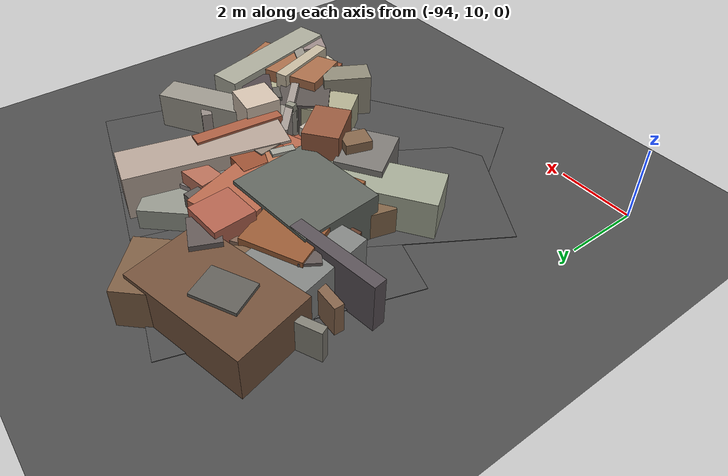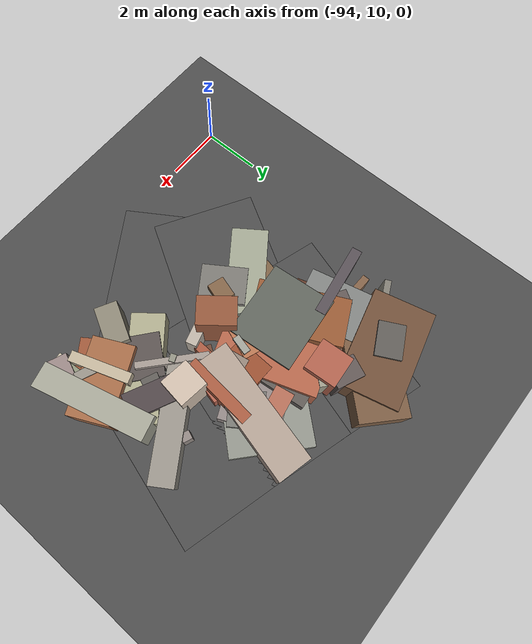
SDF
<sdf version="1.6">
 <world name="navitas_arena">
  <model name="ground_plane">
   <static>true</static>
   <link name="link">
    <collision name="collision">
     <geometry><plane><normal>0 0 1</normal><size>400 400</size></plane></geometry>
     <surface><friction><ode><mu>0.800</mu><mu2>0.800</mu2></ode></friction></surface>
    </collision>
    <visual name="visual">
     <cast_shadows>false</cast_shadows>
     <geometry><plane><normal>0 0 1</normal><size>400 400</size></plane></geometry>
     <material>
      <specular>0.04 0.04 0.04 1</specular>
      <script>
       <uri>file://media/materials/scripts/navitas_asphalt.material</uri>
       <name>Navitas/RealArenaAsphalt</name>
      </script>
     </material>
    </visual>
   </link>
  </model>
  <model name="road_kolay_2_13">
   <static>true</static>
   <pose>-88.023 12.771 0.040 0 0 2.145</pose>
   <link name="link">
    <collision name="col"><geometry><box><size>3.309 6.000 0.020</size></box></geometry></collision>
    <visual name="vis">
     <geometry><box><size>3.309 6.000 0.020</size></box></geometry>
     <material>
      <specular>0.04 0.04 0.04 1</specular>
      <script>
       <uri>file://media/materials/scripts/navitas_asphalt.material</uri>
       <name>Navitas/RealArenaAsphalt</name>
      </script>
     </material>
    </visual>
   </link>
  </model>
  <model name="road_kolay_2_14">
   <static>true</static>
   <pose>-89.848 14.469 0.040 0 0 2.611</pose>
   <link name="link">
    <collision name="col"><geometry><box><size>3.613 6.000 0.020</size></box></geometry></collision>
    <visual name="vis">
     <geometry><box><size>3.613 6.000 0.020</size></box></geometry>
     <material>
      <specular>0.04 0.04 0.04 1</specular>
      <script>
       <uri>file://media/materials/scripts/navitas_asphalt.material</uri>
       <name>Navitas/RealArenaAsphalt</name>
      </script>
     </material>
    </visual>
   </link>
  </model>
  <model name="road_kolay_3_21">
   <static>true</static>
   <pose>-85.226 16.409 0.040 0 0 2.866</pose>
   <link name="link">
    <collision name="col"><geometry><box><size>3.599 6.000 0.020</size></box></geometry></collision>
    <visual name="vis">
     <geometry><box><size>3.599 6.000 0.020</size></box></geometry>
     <material>
      <specular>0.04 0.04 0.04 1</specular>
      <script>
       <uri>file://media/materials/scripts/navitas_asphalt.material</uri>
       <name>Navitas/RealArenaAsphalt</name>
      </script>
     </material>
    </visual>
   </link>
  </model>
  <model name="road_kolay_3_22">
   <static>true</static>
   <pose>-87.730 17.138 0.040 0 0 2.850</pose>
   <link name="link">
    <collision name="col"><geometry><box><size>3.416 6.000 0.020</size></box></geometry></collision>
    <visual name="vis">
     <geometry><box><size>3.416 6.000 0.020</size></box></geometry>
     <material>
      <specular>0.04 0.04 0.04 1</specular>
      <script>
       <uri>file://media/materials/scripts/navitas_asphalt.material</uri>
       <name>Navitas/RealArenaAsphalt</name>
      </script>
     </material>
    </visual>
   </link>
  </model>
  <model name="road_kolay_3_23">
   <static>true</static>
   <pose>-90.262 17.910 0.040 0 0 2.842</pose>
   <link name="link">
    <collision name="col"><geometry><box><size>3.678 6.000 0.020</size></box></geometry></collision>
    <visual name="vis">
     <geometry><box><size>3.678 6.000 0.020</size></box></geometry>
     <material>
      <specular>0.04 0.04 0.04 1</specular>
      <script>
       <uri>file://media/materials/scripts/navitas_asphalt.material</uri>
       <name>Navitas/RealArenaAsphalt</name>
      </script>
     </material>
    </visual>
   </link>
  </model>
  <model name="blk_kolay_2_1_0">
   <static>true</static>
   <pose>-91.252 17.750 0.000 0 0 0</pose>
   <link name="link">
    <collision name="col_0">
     <pose>0.917 0.710 0.527 0.000 0.000 0.587</pose>
     <geometry><box><size>1.884 0.183 1.054</size></box></geometry>
    </collision>
    <visual name="vis_0">
     <pose>0.917 0.710 0.527 0.000 0.000 0.587</pose>
     <geometry><box><size>1.884 0.183 1.054</size></box></geometry>
     <material>
      <ambient>0.48 0.37 0.31 1</ambient>
      <diffuse>0.52 0.40 0.33 1</diffuse>
      <specular>0.05 0.05 0.045 1</specular>
     </material>
    </visual>
    <collision name="col_1">
     <pose>0.656 -0.645 0.342 0.000 0.000 0.316</pose>
     <geometry><box><size>1.088 0.505 0.684</size></box></geometry>
    </collision>
    <visual name="vis_1">
     <pose>0.656 -0.645 0.342 0.000 0.000 0.316</pose>
     <geometry><box><size>1.088 0.505 0.684</size></box></geometry>
     <material>
      <ambient>0.44 0.31 0.25 1</ambient>
      <diffuse>0.48 0.34 0.27 1</diffuse>
      <specular>0.05 0.05 0.045 1</specular>
     </material>
    </visual>
    <collision name="col_2">
     <pose>0.271 0.726 0.419 0.000 0.000 1.671</pose>
     <geometry><box><size>0.327 0.238 0.838</size></box></geometry>
    </collision>
    <visual name="vis_2">
     <pose>0.271 0.726 0.419 0.000 0.000 1.671</pose>
     <geometry><box><size>0.327 0.238 0.838</size></box></geometry>
     <material>
      <ambient>0.59 0.37 0.25 1</ambient>
      <diffuse>0.64 0.40 0.27 1</diffuse>
      <specular>0.05 0.05 0.045 1</specular>
     </material>
    </visual>
    <collision name="col_3">
     <pose>0.190 -1.019 0.394 0.000 0.000 0.307</pose>
     <geometry><box><size>0.701 0.986 0.787</size></box></geometry>
    </collision>
    <visual name="vis_3">
     <pose>0.190 -1.019 0.394 0.000 0.000 0.307</pose>
     <geometry><box><size>0.701 0.986 0.787</size></box></geometry>
     <material>
      <ambient>0.36 0.22 0.16 1</ambient>
      <diffuse>0.39 0.24 0.17 1</diffuse>
      <specular>0.05 0.05 0.045 1</specular>
     </material>
    </visual>
    <collision name="col_4">
     <pose>-0.567 -0.463 0.653 0.000 0.000 0.149</pose>
     <geometry><box><size>2.492 0.342 1.306</size></box></geometry>
    </collision>
    <visual name="vis_4">
     <pose>-0.567 -0.463 0.653 0.000 0.000 0.149</pose>
     <geometry><box><size>2.492 0.342 1.306</size></box></geometry>
     <material>
      <ambient>0.32 0.30 0.31 1</ambient>
      <diffuse>0.35 0.32 0.34 1</diffuse>
      <specular>0.05 0.05 0.045 1</specular>
     </material>
    </visual>
    <collision name="col_5">
     <pose>0.451 -0.109 0.428 0.000 0.000 2.022</pose>
     <geometry><box><size>3.048 0.359 0.857</size></box></geometry>
    </collision>
    <visual name="vis_5">
     <pose>0.451 -0.109 0.428 0.000 0.000 2.022</pose>
     <geometry><box><size>3.048 0.359 0.857</size></box></geometry>
     <material>
      <ambient>0.61 0.36 0.24 1</ambient>
      <diffuse>0.66 0.39 0.26 1</diffuse>
      <specular>0.05 0.05 0.045 1</specular>
     </material>
    </visual>
    <collision name="col_6">
     <pose>-0.659 0.083 0.408 0.000 0.000 -0.030</pose>
     <geometry><box><size>1.586 0.243 0.816</size></box></geometry>
    </collision>
    <visual name="vis_6">
     <pose>-0.659 0.083 0.408 0.000 0.000 -0.030</pose>
     <geometry><box><size>1.586 0.243 0.816</size></box></geometry>
     <material>
      <ambient>0.49 0.36 0.27 1</ambient>
      <diffuse>0.52 0.39 0.29 1</diffuse>
      <specular>0.05 0.05 0.045 1</specular>
     </material>
    </visual>
    <collision name="col_7">
     <pose>0.561 0.576 0.493 0.000 0.000 -0.481</pose>
     <geometry><box><size>0.327 0.253 0.987</size></box></geometry>
    </collision>
    <visual name="vis_7">
     <pose>0.561 0.576 0.493 0.000 0.000 -0.481</pose>
     <geometry><box><size>0.327 0.253 0.987</size></box></geometry>
     <material>
      <ambient>0.62 0.57 0.52 1</ambient>
      <diffuse>0.67 0.61 0.56 1</diffuse>
      <specular>0.05 0.05 0.045 1</specular>
     </material>
    </visual>
   </link>
  </model>
  <model name="blk_kolay_2_1_2">
   <static>true</static>
   <pose>-90.778 18.878 0.000 0 0 0</pose>
   <link name="link">
    <collision name="col_0">
     <pose>0.502 0.430 0.367 0.000 0.000 3.682</pose>
     <geometry><box><size>2.176 0.177 0.734</size></box></geometry>
    </collision>
    <visual name="vis_0">
     <pose>0.502 0.430 0.367 0.000 0.000 3.682</pose>
     <geometry><box><size>2.176 0.177 0.734</size></box></geometry>
     <material>
      <ambient>0.46 0.36 0.29 1</ambient>
      <diffuse>0.50 0.38 0.31 1</diffuse>
      <specular>0.05 0.05 0.045 1</specular>
     </material>
    </visual>
    <collision name="col_1">
     <pose>0.151 0.289 0.379 0.000 0.000 2.322</pose>
     <geometry><box><size>0.673 0.251 0.758</size></box></geometry>
    </collision>
    <visual name="vis_1">
     <pose>0.151 0.289 0.379 0.000 0.000 2.322</pose>
     <geometry><box><size>0.673 0.251 0.758</size></box></geometry>
     <material>
      <ambient>0.66 0.41 0.30 1</ambient>
      <diffuse>0.71 0.44 0.32 1</diffuse>
      <specular>0.05 0.05 0.045 1</specular>
     </material>
    </visual>
    <collision name="col_2">
     <pose>1.167 0.300 0.648 0.000 0.000 2.728</pose>
     <geometry><box><size>0.932 0.736 1.295</size></box></geometry>
    </collision>
    <visual name="vis_2">
     <pose>1.167 0.300 0.648 0.000 0.000 2.728</pose>
     <geometry><box><size>0.932 0.736 1.295</size></box></geometry>
     <material>
      <ambient>0.36 0.32 0.32 1</ambient>
      <diffuse>0.39 0.35 0.34 1</diffuse>
      <specular>0.05 0.05 0.045 1</specular>
     </material>
    </visual>
    <collision name="col_3">
     <pose>-0.504 0.769 0.622 0.000 0.000 3.621</pose>
     <geometry><box><size>1.140 0.856 1.244</size></box></geometry>
    </collision>
    <visual name="vis_3">
     <pose>-0.504 0.769 0.622 0.000 0.000 3.621</pose>
     <geometry><box><size>1.140 0.856 1.244</size></box></geometry>
     <material>
      <ambient>0.35 0.34 0.32 1</ambient>
      <diffuse>0.38 0.37 0.35 1</diffuse>
      <specular>0.05 0.05 0.045 1</specular>
     </material>
    </visual>
    <collision name="col_4">
     <pose>0.176 -0.051 0.425 0.000 0.000 3.966</pose>
     <geometry><box><size>1.147 0.724 0.850</size></box></geometry>
    </collision>
    <visual name="vis_4">
     <pose>0.176 -0.051 0.425 0.000 0.000 3.966</pose>
     <geometry><box><size>1.147 0.724 0.850</size></box></geometry>
     <material>
      <ambient>0.64 0.40 0.28 1</ambient>
      <diffuse>0.69 0.43 0.30 1</diffuse>
      <specular>0.05 0.05 0.045 1</specular>
     </material>
    </visual>
    <collision name="col_5">
     <pose>-0.439 -0.931 0.534 0.000 0.000 1.810</pose>
     <geometry><box><size>2.808 1.705 1.067</size></box></geometry>
    </collision>
    <visual name="vis_5">
     <pose>-0.439 -0.931 0.534 0.000 0.000 1.810</pose>
     <geometry><box><size>2.808 1.705 1.067</size></box></geometry>
     <material>
      <ambient>0.48 0.48 0.47 1</ambient>
      <diffuse>0.51 0.52 0.51 1</diffuse>
      <specular>0.05 0.05 0.045 1</specular>
     </material>
    </visual>
    <collision name="col_6">
     <pose>-0.949 0.223 0.438 0.000 0.000 3.591</pose>
     <geometry><box><size>2.947 0.214 0.875</size></box></geometry>
    </collision>
    <visual name="vis_6">
     <pose>-0.949 0.223 0.438 0.000 0.000 3.591</pose>
     <geometry><box><size>2.947 0.214 0.875</size></box></geometry>
     <material>
      <ambient>0.47 0.46 0.43 1</ambient>
      <diffuse>0.51 0.50 0.46 1</diffuse>
      <specular>0.05 0.05 0.045 1</specular>
     </material>
    </visual>
   </link>
  </model>
  <model name="blk_kolay_2_1_3">
   <static>true</static>
   <pose>-89.079 15.612 0.000 0 0 0</pose>
   <link name="link">
    <collision name="col_0">
     <pose>-0.036 -0.900 0.765 0.000 0.000 2.844</pose>
     <geometry><box><size>0.554 0.686 1.530</size></box></geometry>
    </collision>
    <visual name="vis_0">
     <pose>-0.036 -0.900 0.765 0.000 0.000 2.844</pose>
     <geometry><box><size>0.554 0.686 1.530</size></box></geometry>
     <material>
      <ambient>0.48 0.37 0.27 1</ambient>
      <diffuse>0.52 0.40 0.29 1</diffuse>
      <specular>0.05 0.05 0.045 1</specular>
     </material>
    </visual>
    <collision name="col_1">
     <pose>-0.306 -1.053 0.634 0.000 0.000 2.164</pose>
     <geometry><box><size>1.490 1.232 1.267</size></box></geometry>
    </collision>
    <visual name="vis_1">
     <pose>-0.306 -1.053 0.634 0.000 0.000 2.164</pose>
     <geometry><box><size>1.490 1.232 1.267</size></box></geometry>
     <material>
      <ambient>0.45 0.44 0.42 1</ambient>
      <diffuse>0.49 0.48 0.46 1</diffuse>
      <specular>0.05 0.05 0.045 1</specular>
     </material>
    </visual>
    <collision name="col_2">
     <pose>0.842 0.664 0.658 0.000 0.000 1.318</pose>
     <geometry><box><size>0.598 0.229 1.316</size></box></geometry>
    </collision>
    <visual name="vis_2">
     <pose>0.842 0.664 0.658 0.000 0.000 1.318</pose>
     <geometry><box><size>0.598 0.229 1.316</size></box></geometry>
     <material>
      <ambient>0.59 0.59 0.56 1</ambient>
      <diffuse>0.64 0.64 0.60 1</diffuse>
      <specular>0.05 0.05 0.045 1</specular>
     </material>
    </visual>
    <collision name="col_3">
     <pose>-0.701 0.355 0.391 0.000 0.000 1.319</pose>
     <geometry><box><size>2.519 2.109 0.782</size></box></geometry>
    </collision>
    <visual name="vis_3">
     <pose>-0.701 0.355 0.391 0.000 0.000 1.319</pose>
     <geometry><box><size>2.519 2.109 0.782</size></box></geometry>
     <material>
      <ambient>0.46 0.36 0.26 1</ambient>
      <diffuse>0.50 0.39 0.28 1</diffuse>
      <specular>0.05 0.05 0.045 1</specular>
     </material>
    </visual>
    <collision name="col_4">
     <pose>-0.792 -0.944 0.428 0.000 0.000 3.623</pose>
     <geometry><box><size>1.992 0.194 0.857</size></box></geometry>
    </collision>
    <visual name="vis_4">
     <pose>-0.792 -0.944 0.428 0.000 0.000 3.623</pose>
     <geometry><box><size>1.992 0.194 0.857</size></box></geometry>
     <material>
      <ambient>0.49 0.33 0.26 1</ambient>
      <diffuse>0.52 0.36 0.28 1</diffuse>
      <specular>0.05 0.05 0.045 1</specular>
     </material>
    </visual>
    <collision name="col_5">
     <pose>-0.665 1.035 0.650 0.000 0.000 3.240</pose>
     <geometry><box><size>2.594 2.177 1.300</size></box></geometry>
    </collision>
    <visual name="vis_5">
     <pose>-0.665 1.035 0.650 0.000 0.000 3.240</pose>
     <geometry><box><size>2.594 2.177 1.300</size></box></geometry>
     <material>
      <ambient>0.35 0.37 0.35 1</ambient>
      <diffuse>0.38 0.40 0.37 1</diffuse>
      <specular>0.05 0.05 0.045 1</specular>
     </material>
    </visual>
    <collision name="col_6">
     <pose>-0.996 -0.504 0.455 0.000 0.000 1.246</pose>
     <geometry><box><size>0.411 0.568 0.909</size></box></geometry>
    </collision>
    <visual name="vis_6">
     <pose>-0.996 -0.504 0.455 0.000 0.000 1.246</pose>
     <geometry><box><size>0.411 0.568 0.909</size></box></geometry>
     <material>
      <ambient>0.33 0.31 0.33 1</ambient>
      <diffuse>0.36 0.34 0.36 1</diffuse>
      <specular>0.05 0.05 0.045 1</specular>
     </material>
    </visual>
    <collision name="col_7">
     <pose>0.568 -0.924 0.512 0.000 0.000 3.411</pose>
     <geometry><box><size>2.530 0.370 1.023</size></box></geometry>
    </collision>
    <visual name="vis_7">
     <pose>0.568 -0.924 0.512 0.000 0.000 3.411</pose>
     <geometry><box><size>2.530 0.370 1.023</size></box></geometry>
     <material>
      <ambient>0.69 0.66 0.62 1</ambient>
      <diffuse>0.75 0.71 0.66 1</diffuse>
      <specular>0.05 0.05 0.045 1</specular>
     </material>
    </visual>
    <collision name="col_8">
     <pose>-0.146 -1.322 0.350 0.000 0.000 2.591</pose>
     <geometry><box><size>0.632 0.875 0.700</size></box></geometry>
    </collision>
    <visual name="vis_8">
     <pose>-0.146 -1.322 0.350 0.000 0.000 2.591</pose>
     <geometry><box><size>0.632 0.875 0.700</size></box></geometry>
     <material>
      <ambient>0.66 0.64 0.58 1</ambient>
      <diffuse>0.71 0.69 0.63 1</diffuse>
      <specular>0.05 0.05 0.045 1</specular>
     </material>
    </visual>
   </link>
  </model>
  <model name="blk_kolay_2_1_4">
   <static>true</static>
   <pose>-88.444 17.592 0.000 0 0 0</pose>
   <link name="link">
    <collision name="col_0">
     <pose>1.437 0.765 0.307 0.000 0.000 2.413</pose>
     <geometry><box><size>2.637 1.738 0.614</size></box></geometry>
    </collision>
    <visual name="vis_0">
     <pose>1.437 0.765 0.307 0.000 0.000 2.413</pose>
     <geometry><box><size>2.637 1.738 0.614</size></box></geometry>
     <material>
      <ambient>0.54 0.55 0.50 1</ambient>
      <diffuse>0.58 0.59 0.55 1</diffuse>
      <specular>0.05 0.05 0.045 1</specular>
     </material>
    </visual>
    <collision name="col_1">
     <pose>0.350 -0.708 0.560 0.000 0.000 3.561</pose>
     <geometry><box><size>0.588 0.285 1.121</size></box></geometry>
    </collision>
    <visual name="vis_1">
     <pose>0.350 -0.708 0.560 0.000 0.000 3.561</pose>
     <geometry><box><size>0.588 0.285 1.121</size></box></geometry>
     <material>
      <ambient>0.63 0.36 0.26 1</ambient>
      <diffuse>0.68 0.39 0.29 1</diffuse>
      <specular>0.05 0.05 0.045 1</specular>
     </material>
    </visual>
    <collision name="col_2">
     <pose>1.060 -1.202 0.568 0.000 0.000 2.565</pose>
     <geometry><box><size>2.021 0.335 1.137</size></box></geometry>
    </collision>
    <visual name="vis_2">
     <pose>1.060 -1.202 0.568 0.000 0.000 2.565</pose>
     <geometry><box><size>2.021 0.335 1.137</size></box></geometry>
     <material>
      <ambient>0.64 0.61 0.51 1</ambient>
      <diffuse>0.69 0.66 0.56 1</diffuse>
      <specular>0.05 0.05 0.045 1</specular>
     </material>
    </visual>
    <collision name="col_3">
     <pose>1.548 0.003 0.419 0.000 0.000 2.181</pose>
     <geometry><box><size>1.125 1.141 0.838</size></box></geometry>
    </collision>
    <visual name="vis_3">
     <pose>1.548 0.003 0.419 0.000 0.000 2.181</pose>
     <geometry><box><size>1.125 1.141 0.838</size></box></geometry>
     <material>
      <ambient>0.45 0.45 0.43 1</ambient>
      <diffuse>0.48 0.48 0.46 1</diffuse>
      <specular>0.05 0.05 0.045 1</specular>
     </material>
    </visual>
    <collision name="col_4">
     <pose>-0.584 1.238 0.616 0.000 0.000 2.418</pose>
     <geometry><box><size>0.360 0.444 1.231</size></box></geometry>
    </collision>
    <visual name="vis_4">
     <pose>-0.584 1.238 0.616 0.000 0.000 2.418</pose>
     <geometry><box><size>0.360 0.444 1.231</size></box></geometry>
     <material>
      <ambient>0.59 0.57 0.51 1</ambient>
      <diffuse>0.63 0.62 0.55 1</diffuse>
      <specular>0.05 0.05 0.045 1</specular>
     </material>
    </visual>
    <collision name="col_5">
     <pose>1.048 -0.029 0.376 0.000 0.000 3.567</pose>
     <geometry><box><size>1.938 1.921 0.752</size></box></geometry>
    </collision>
    <visual name="vis_5">
     <pose>1.048 -0.029 0.376 0.000 0.000 3.567</pose>
     <geometry><box><size>1.938 1.921 0.752</size></box></geometry>
     <material>
      <ambient>0.53 0.50 0.49 1</ambient>
      <diffuse>0.58 0.54 0.53 1</diffuse>
      <specular>0.05 0.05 0.045 1</specular>
     </material>
    </visual>
    <collision name="col_6">
     <pose>-0.915 -0.353 0.484 0.000 0.000 3.278</pose>
     <geometry><box><size>0.676 0.528 0.968</size></box></geometry>
    </collision>
    <visual name="vis_6">
     <pose>-0.915 -0.353 0.484 0.000 0.000 3.278</pose>
     <geometry><box><size>0.676 0.528 0.968</size></box></geometry>
     <material>
      <ambient>0.55 0.34 0.22 1</ambient>
      <diffuse>0.59 0.37 0.23 1</diffuse>
      <specular>0.05 0.05 0.045 1</specular>
     </material>
    </visual>
   </link>
  </model>
  <model name="blk_kolay_2_1_6">
   <static>true</static>
   <pose>-88.203 17.367 0.000 0 0 0</pose>
   <link name="link">
    <collision name="col_0">
     <pose>0.743 0.880 0.558 0.000 0.000 3.316</pose>
     <geometry><box><size>1.205 0.608 1.116</size></box></geometry>
    </collision>
    <visual name="vis_0">
     <pose>0.743 0.880 0.558 0.000 0.000 3.316</pose>
     <geometry><box><size>1.205 0.608 1.116</size></box></geometry>
     <material>
      <ambient>0.66 0.40 0.33 1</ambient>
      <diffuse>0.72 0.44 0.35 1</diffuse>
      <specular>0.05 0.05 0.045 1</specular>
     </material>
    </visual>
    <collision name="col_1">
     <pose>1.283 0.393 0.633 0.000 0.000 1.327</pose>
     <geometry><box><size>4.186 1.147 1.265</size></box></geometry>
    </collision>
    <visual name="vis_1">
     <pose>1.283 0.393 0.633 0.000 0.000 1.327</pose>
     <geometry><box><size>4.186 1.147 1.265</size></box></geometry>
     <material>
      <ambient>0.66 0.60 0.55 1</ambient>
      <diffuse>0.71 0.64 0.59 1</diffuse>
      <specular>0.05 0.05 0.045 1</specular>
     </material>
    </visual>
    <collision name="col_2">
     <pose>-0.517 0.370 0.505 0.000 0.000 3.258</pose>
     <geometry><box><size>1.745 2.079 1.010</size></box></geometry>
    </collision>
    <visual name="vis_2">
     <pose>-0.517 0.370 0.505 0.000 0.000 3.258</pose>
     <geometry><box><size>1.745 2.079 1.010</size></box></geometry>
     <material>
      <ambient>0.35 0.33 0.31 1</ambient>
      <diffuse>0.38 0.36 0.34 1</diffuse>
      <specular>0.05 0.05 0.045 1</specular>
     </material>
    </visual>
    <collision name="col_3">
     <pose>-1.314 -0.474 0.508 0.000 0.000 2.666</pose>
     <geometry><box><size>0.609 0.457 1.017</size></box></geometry>
    </collision>
    <visual name="vis_3">
     <pose>-1.314 -0.474 0.508 0.000 0.000 2.666</pose>
     <geometry><box><size>0.609 0.457 1.017</size></box></geometry>
     <material>
      <ambient>0.61 0.60 0.55 1</ambient>
      <diffuse>0.66 0.65 0.59 1</diffuse>
      <specular>0.05 0.05 0.045 1</specular>
     </material>
    </visual>
    <collision name="col_4">
     <pose>0.521 -0.622 0.602 0.000 0.000 1.538</pose>
     <geometry><box><size>1.308 1.287 1.204</size></box></geometry>
    </collision>
    <visual name="vis_4">
     <pose>0.521 -0.622 0.602 0.000 0.000 1.538</pose>
     <geometry><box><size>1.308 1.287 1.204</size></box></geometry>
     <material>
      <ambient>0.56 0.30 0.19 1</ambient>
      <diffuse>0.61 0.32 0.20 1</diffuse>
      <specular>0.05 0.05 0.045 1</specular>
     </material>
    </visual>
    <collision name="col_5">
     <pose>-0.408 -0.204 0.599 0.000 0.000 1.905</pose>
     <geometry><box><size>3.341 1.545 1.197</size></box></geometry>
    </collision>
    <visual name="vis_5">
     <pose>-0.408 -0.204 0.599 0.000 0.000 1.905</pose>
     <geometry><box><size>3.341 1.545 1.197</size></box></geometry>
     <material>
      <ambient>0.67 0.38 0.28 1</ambient>
      <diffuse>0.72 0.41 0.30 1</diffuse>
      <specular>0.05 0.05 0.045 1</specular>
     </material>
    </visual>
    <collision name="col_6">
     <pose>-0.484 -1.527 0.572 0.000 0.000 1.000</pose>
     <geometry><box><size>0.482 0.251 1.145</size></box></geometry>
    </collision>
    <visual name="vis_6">
     <pose>-0.484 -1.527 0.572 0.000 0.000 1.000</pose>
     <geometry><box><size>0.482 0.251 1.145</size></box></geometry>
     <material>
      <ambient>0.34 0.34 0.33 1</ambient>
      <diffuse>0.36 0.36 0.36 1</diffuse>
      <specular>0.05 0.05 0.045 1</specular>
     </material>
    </visual>
    <collision name="col_7">
     <pose>0.850 -0.858 0.382 0.000 0.000 1.497</pose>
     <geometry><box><size>2.762 0.296 0.765</size></box></geometry>
    </collision>
    <visual name="vis_7">
     <pose>0.850 -0.858 0.382 0.000 0.000 1.497</pose>
     <geometry><box><size>2.762 0.296 0.765</size></box></geometry>
     <material>
      <ambient>0.62 0.34 0.24 1</ambient>
      <diffuse>0.67 0.36 0.26 1</diffuse>
      <specular>0.05 0.05 0.045 1</specular>
     </material>
    </visual>
    <collision name="col_8">
     <pose>0.009 -0.375 0.479 0.000 0.000 2.438</pose>
     <geometry><box><size>0.618 0.376 0.957</size></box></geometry>
    </collision>
    <visual name="vis_8">
     <pose>0.009 -0.375 0.479 0.000 0.000 2.438</pose>
     <geometry><box><size>0.618 0.376 0.957</size></box></geometry>
     <material>
      <ambient>0.60 0.34 0.24 1</ambient>
      <diffuse>0.65 0.37 0.26 1</diffuse>
      <specular>0.05 0.05 0.045 1</specular>
     </material>
    </visual>
   </link>
  </model>
  <model name="blk_kolay_2_1_7">
   <static>true</static>
   <pose>-90.823 18.172 0.000 0 0 0</pose>
   <link name="link">
    <collision name="col_0">
     <pose>-0.674 -0.433 0.575 0.000 0.000 1.014</pose>
     <geometry><box><size>0.516 0.374 1.151</size></box></geometry>
    </collision>
    <visual name="vis_0">
     <pose>-0.674 -0.433 0.575 0.000 0.000 1.014</pose>
     <geometry><box><size>0.516 0.374 1.151</size></box></geometry>
     <material>
      <ambient>0.36 0.32 0.32 1</ambient>
      <diffuse>0.39 0.35 0.34 1</diffuse>
      <specular>0.05 0.05 0.045 1</specular>
     </material>
    </visual>
    <collision name="col_1">
     <pose>-0.245 1.012 0.295 0.000 0.000 1.293</pose>
     <geometry><box><size>0.439 0.444 0.590</size></box></geometry>
    </collision>
    <visual name="vis_1">
     <pose>-0.245 1.012 0.295 0.000 0.000 1.293</pose>
     <geometry><box><size>0.439 0.444 0.590</size></box></geometry>
     <material>
      <ambient>0.55 0.55 0.45 1</ambient>
      <diffuse>0.59 0.59 0.49 1</diffuse>
      <specular>0.05 0.05 0.045 1</specular>
     </material>
    </visual>
    <collision name="col_2">
     <pose>0.392 1.499 0.526 0.000 0.000 0.821</pose>
     <geometry><box><size>3.525 1.585 1.053</size></box></geometry>
    </collision>
    <visual name="vis_2">
     <pose>0.392 1.499 0.526 0.000 0.000 0.821</pose>
     <geometry><box><size>3.525 1.585 1.053</size></box></geometry>
     <material>
      <ambient>0.45 0.35 0.25 1</ambient>
      <diffuse>0.49 0.37 0.27 1</diffuse>
      <specular>0.05 0.05 0.045 1</specular>
     </material>
    </visual>
    <collision name="col_3">
     <pose>0.589 -1.171 0.606 0.000 0.000 2.028</pose>
     <geometry><box><size>2.983 1.591 1.212</size></box></geometry>
    </collision>
    <visual name="vis_3">
     <pose>0.589 -1.171 0.606 0.000 0.000 2.028</pose>
     <geometry><box><size>2.983 1.591 1.212</size></box></geometry>
     <material>
      <ambient>0.56 0.33 0.19 1</ambient>
      <diffuse>0.60 0.36 0.21 1</diffuse>
      <specular>0.05 0.05 0.045 1</specular>
     </material>
    </visual>
    <collision name="col_4">
     <pose>0.372 -0.496 0.341 0.000 0.000 2.930</pose>
     <geometry><box><size>0.480 0.246 0.681</size></box></geometry>
    </collision>
    <visual name="vis_4">
     <pose>0.372 -0.496 0.341 0.000 0.000 2.930</pose>
     <geometry><box><size>0.480 0.246 0.681</size></box></geometry>
     <material>
      <ambient>0.69 0.67 0.60 1</ambient>
      <diffuse>0.74 0.72 0.64 1</diffuse>
      <specular>0.05 0.05 0.045 1</specular>
     </material>
    </visual>
    <collision name="col_5">
     <pose>1.295 0.732 0.647 0.000 0.000 0.710</pose>
     <geometry><box><size>0.475 0.227 1.295</size></box></geometry>
    </collision>
    <visual name="vis_5">
     <pose>1.295 0.732 0.647 0.000 0.000 0.710</pose>
     <geometry><box><size>0.475 0.227 1.295</size></box></geometry>
     <material>
      <ambient>0.65 0.62 0.52 1</ambient>
      <diffuse>0.70 0.67 0.57 1</diffuse>
      <specular>0.05 0.05 0.045 1</specular>
     </material>
    </visual>
    <collision name="col_6">
     <pose>1.381 0.467 0.736 0.000 0.000 3.219</pose>
     <geometry><box><size>1.068 1.074 1.471</size></box></geometry>
    </collision>
    <visual name="vis_6">
     <pose>1.381 0.467 0.736 0.000 0.000 3.219</pose>
     <geometry><box><size>1.068 1.074 1.471</size></box></geometry>
     <material>
      <ambient>0.65 0.36 0.29 1</ambient>
      <diffuse>0.70 0.39 0.31 1</diffuse>
      <specular>0.05 0.05 0.045 1</specular>
     </material>
    </visual>
    <collision name="col_7">
     <pose>-0.622 0.310 0.418 0.000 0.000 2.252</pose>
     <geometry><box><size>0.497 0.523 0.836</size></box></geometry>
    </collision>
    <visual name="vis_7">
     <pose>-0.622 0.310 0.418 0.000 0.000 2.252</pose>
     <geometry><box><size>0.497 0.523 0.836</size></box></geometry>
     <material>
      <ambient>0.66 0.40 0.28 1</ambient>
      <diffuse>0.71 0.43 0.30 1</diffuse>
      <specular>0.05 0.05 0.045 1</specular>
     </material>
    </visual>
    <collision name="col_8">
     <pose>-0.216 1.529 0.579 0.000 0.000 3.387</pose>
     <geometry><box><size>3.318 2.014 1.157</size></box></geometry>
    </collision>
    <visual name="vis_8">
     <pose>-0.216 1.529 0.579 0.000 0.000 3.387</pose>
     <geometry><box><size>3.318 2.014 1.157</size></box></geometry>
     <material>
      <ambient>0.42 0.30 0.22 1</ambient>
      <diffuse>0.45 0.32 0.23 1</diffuse>
      <specular>0.05 0.05 0.045 1</specular>
     </material>
    </visual>
   </link>
  </model>
  <model name="blk_kolay_2_1_8">
   <static>true</static>
   <pose>-89.157 15.156 0.000 0 0 0</pose>
   <link name="link">
    <collision name="col_0">
     <pose>0.351 -0.830 0.517 0.000 0.000 -0.130</pose>
     <geometry><box><size>0.322 0.210 1.034</size></box></geometry>
    </collision>
    <visual name="vis_0">
     <pose>0.351 -0.830 0.517 0.000 0.000 -0.130</pose>
     <geometry><box><size>0.322 0.210 1.034</size></box></geometry>
     <material>
      <ambient>0.34 0.31 0.31 1</ambient>
      <diffuse>0.37 0.34 0.34 1</diffuse>
      <specular>0.05 0.05 0.045 1</specular>
     </material>
    </visual>
    <collision name="col_1">
     <pose>-0.196 0.786 0.562 0.000 0.000 1.211</pose>
     <geometry><box><size>0.372 0.344 1.123</size></box></geometry>
    </collision>
    <visual name="vis_1">
     <pose>-0.196 0.786 0.562 0.000 0.000 1.211</pose>
     <geometry><box><size>0.372 0.344 1.123</size></box></geometry>
     <material>
      <ambient>0.56 0.31 0.18 1</ambient>
      <diffuse>0.61 0.33 0.19 1</diffuse>
      <specular>0.05 0.05 0.045 1</specular>
     </material>
    </visual>
    <collision name="col_2">
     <pose>0.502 1.175 0.615 0.000 0.000 1.214</pose>
     <geometry><box><size>1.047 1.079 1.229</size></box></geometry>
    </collision>
    <visual name="vis_2">
     <pose>0.502 1.175 0.615 0.000 0.000 1.214</pose>
     <geometry><box><size>1.047 1.079 1.229</size></box></geometry>
     <material>
      <ambient>0.68 0.43 0.31 1</ambient>
      <diffuse>0.73 0.47 0.33 1</diffuse>
      <specular>0.05 0.05 0.045 1</specular>
     </material>
    </visual>
    <collision name="col_3">
     <pose>0.698 -0.051 0.899 0.000 0.000 0.676</pose>
     <geometry><box><size>0.941 1.259 1.798</size></box></geometry>
    </collision>
    <visual name="vis_3">
     <pose>0.698 -0.051 0.899 0.000 0.000 0.676</pose>
     <geometry><box><size>0.941 1.259 1.798</size></box></geometry>
     <material>
      <ambient>0.54 0.33 0.23 1</ambient>
      <diffuse>0.59 0.35 0.24 1</diffuse>
      <specular>0.05 0.05 0.045 1</specular>
     </material>
    </visual>
    <collision name="col_4">
     <pose>0.820 0.850 0.560 0.000 0.000 0.942</pose>
     <geometry><box><size>1.508 0.719 1.120</size></box></geometry>
    </collision>
    <visual name="vis_4">
     <pose>0.820 0.850 0.560 0.000 0.000 0.942</pose>
     <geometry><box><size>1.508 0.719 1.120</size></box></geometry>
     <material>
      <ambient>0.32 0.35 0.31 1</ambient>
      <diffuse>0.35 0.38 0.34 1</diffuse>
      <specular>0.05 0.05 0.045 1</specular>
     </material>
    </visual>
    <collision name="col_5">
     <pose>-0.996 -0.259 0.546 0.000 0.000 0.622</pose>
     <geometry><box><size>3.295 1.208 1.093</size></box></geometry>
    </collision>
    <visual name="vis_5">
     <pose>-0.996 -0.259 0.546 0.000 0.000 0.622</pose>
     <geometry><box><size>3.295 1.208 1.093</size></box></geometry>
     <material>
      <ambient>0.59 0.61 0.53 1</ambient>
      <diffuse>0.64 0.66 0.58 1</diffuse>
      <specular>0.05 0.05 0.045 1</specular>
     </material>
    </visual>
   </link>
  </model>
  <model name="blk_kolay_3_1_0">
   <static>true</static>
   <pose>-85.710 15.380 0.000 0 0 0</pose>
   <link name="link">
    <collision name="col_0">
     <pose>-0.830 -0.420 0.590 0.000 0.000 2.421</pose>
     <geometry><box><size>2.293 0.212 1.180</size></box></geometry>
    </collision>
    <visual name="vis_0">
     <pose>-0.830 -0.420 0.590 0.000 0.000 2.421</pose>
     <geometry><box><size>2.293 0.212 1.180</size></box></geometry>
     <material>
      <ambient>0.60 0.56 0.54 1</ambient>
      <diffuse>0.65 0.61 0.58 1</diffuse>
      <specular>0.05 0.05 0.045 1</specular>
     </material>
    </visual>
    <collision name="col_1">
     <pose>0.489 0.745 0.527 0.000 0.000 3.712</pose>
     <geometry><box><size>3.850 0.795 1.054</size></box></geometry>
    </collision>
    <visual name="vis_1">
     <pose>0.489 0.745 0.527 0.000 0.000 3.712</pose>
     <geometry><box><size>3.850 0.795 1.054</size></box></geometry>
     <material>
      <ambient>0.57 0.55 0.51 1</ambient>
      <diffuse>0.61 0.59 0.55 1</diffuse>
      <specular>0.05 0.05 0.045 1</specular>
     </material>
    </visual>
    <collision name="col_2">
     <pose>-0.201 -0.427 0.472 0.000 0.000 2.235</pose>
     <geometry><box><size>0.480 0.375 0.945</size></box></geometry>
    </collision>
    <visual name="vis_2">
     <pose>-0.201 -0.427 0.472 0.000 0.000 2.235</pose>
     <geometry><box><size>0.480 0.375 0.945</size></box></geometry>
     <material>
      <ambient>0.43 0.45 0.42 1</ambient>
      <diffuse>0.46 0.49 0.46 1</diffuse>
      <specular>0.05 0.05 0.045 1</specular>
     </material>
    </visual>
    <collision name="col_3">
     <pose>0.029 -0.545 0.552 0.000 0.000 2.730</pose>
     <geometry><box><size>0.543 0.229 1.105</size></box></geometry>
    </collision>
    <visual name="vis_3">
     <pose>0.029 -0.545 0.552 0.000 0.000 2.730</pose>
     <geometry><box><size>0.543 0.229 1.105</size></box></geometry>
     <material>
      <ambient>0.35 0.35 0.32 1</ambient>
      <diffuse>0.38 0.37 0.35 1</diffuse>
      <specular>0.05 0.05 0.045 1</specular>
     </material>
    </visual>
    <collision name="col_4">
     <pose>-0.236 0.359 0.367 0.000 0.000 1.770</pose>
     <geometry><box><size>0.205 0.213 0.734</size></box></geometry>
    </collision>
    <visual name="vis_4">
     <pose>-0.236 0.359 0.367 0.000 0.000 1.770</pose>
     <geometry><box><size>0.205 0.213 0.734</size></box></geometry>
     <material>
      <ambient>0.66 0.43 0.28 1</ambient>
      <diffuse>0.71 0.46 0.30 1</diffuse>
      <specular>0.05 0.05 0.045 1</specular>
     </material>
    </visual>
    <collision name="col_5">
     <pose>-0.501 0.403 0.821 0.000 0.000 1.441</pose>
     <geometry><box><size>0.945 0.973 1.641</size></box></geometry>
    </collision>
    <visual name="vis_5">
     <pose>-0.501 0.403 0.821 0.000 0.000 1.441</pose>
     <geometry><box><size>0.945 0.973 1.641</size></box></geometry>
     <material>
      <ambient>0.75 0.69 0.63 1</ambient>
      <diffuse>0.82 0.75 0.68 1</diffuse>
      <specular>0.05 0.05 0.045 1</specular>
     </material>
    </visual>
    <collision name="col_6">
     <pose>-0.149 -1.005 0.453 0.000 0.000 3.814</pose>
     <geometry><box><size>3.461 1.104 0.907</size></box></geometry>
    </collision>
    <visual name="vis_6">
     <pose>-0.149 -1.005 0.453 0.000 0.000 3.814</pose>
     <geometry><box><size>3.461 1.104 0.907</size></box></geometry>
     <material>
      <ambient>0.64 0.63 0.52 1</ambient>
      <diffuse>0.69 0.68 0.56 1</diffuse>
      <specular>0.05 0.05 0.045 1</specular>
     </material>
    </visual>
    <collision name="col_7">
     <pose>-0.882 -0.435 0.624 0.000 0.000 3.533</pose>
     <geometry><box><size>0.245 0.190 1.249</size></box></geometry>
    </collision>
    <visual name="vis_7">
     <pose>-0.882 -0.435 0.624 0.000 0.000 3.533</pose>
     <geometry><box><size>0.245 0.190 1.249</size></box></geometry>
     <material>
      <ambient>0.53 0.54 0.48 1</ambient>
      <diffuse>0.58 0.58 0.52 1</diffuse>
      <specular>0.05 0.05 0.045 1</specular>
     </material>
    </visual>
   </link>
  </model>
  <model name="blk_kolay_3_1_2">
   <static>true</static>
   <pose>-84.721 13.558 0.000 0 0 0</pose>
   <link name="link">
    <collision name="col_0">
     <pose>-0.031 -0.464 0.402 0.000 0.000 1.796</pose>
     <geometry><box><size>0.531 0.390 0.803</size></box></geometry>
    </collision>
    <visual name="vis_0">
     <pose>-0.031 -0.464 0.402 0.000 0.000 1.796</pose>
     <geometry><box><size>0.531 0.390 0.803</size></box></geometry>
     <material>
      <ambient>0.62 0.60 0.55 1</ambient>
      <diffuse>0.67 0.65 0.59 1</diffuse>
      <specular>0.05 0.05 0.045 1</specular>
     </material>
    </visual>
    <collision name="col_1">
     <pose>0.540 -0.849 0.593 0.000 0.000 3.227</pose>
     <geometry><box><size>0.646 0.730 1.186</size></box></geometry>
    </collision>
    <visual name="vis_1">
     <pose>0.540 -0.849 0.593 0.000 0.000 3.227</pose>
     <geometry><box><size>0.646 0.730 1.186</size></box></geometry>
     <material>
      <ambient>0.53 0.54 0.45 1</ambient>
      <diffuse>0.57 0.59 0.49 1</diffuse>
      <specular>0.05 0.05 0.045 1</specular>
     </material>
    </visual>
    <collision name="col_2">
     <pose>-0.764 0.102 0.615 0.000 0.000 3.831</pose>
     <geometry><box><size>0.432 0.381 1.229</size></box></geometry>
    </collision>
    <visual name="vis_2">
     <pose>-0.764 0.102 0.615 0.000 0.000 3.831</pose>
     <geometry><box><size>0.432 0.381 1.229</size></box></geometry>
     <material>
      <ambient>0.41 0.27 0.16 1</ambient>
      <diffuse>0.44 0.29 0.18 1</diffuse>
      <specular>0.05 0.05 0.045 1</specular>
     </material>
    </visual>
    <collision name="col_3">
     <pose>0.002 0.214 0.632 0.000 0.000 3.590</pose>
     <geometry><box><size>2.494 1.373 1.264</size></box></geometry>
    </collision>
    <visual name="vis_3">
     <pose>0.002 0.214 0.632 0.000 0.000 3.590</pose>
     <geometry><box><size>2.494 1.373 1.264</size></box></geometry>
     <material>
      <ambient>0.61 0.40 0.27 1</ambient>
      <diffuse>0.66 0.43 0.29 1</diffuse>
      <specular>0.05 0.05 0.045 1</specular>
     </material>
    </visual>
    <collision name="col_4">
     <pose>0.567 -0.870 0.624 0.000 0.000 2.753</pose>
     <geometry><box><size>0.628 0.929 1.247</size></box></geometry>
    </collision>
    <visual name="vis_4">
     <pose>0.567 -0.870 0.624 0.000 0.000 2.753</pose>
     <geometry><box><size>0.628 0.929 1.247</size></box></geometry>
     <material>
      <ambient>0.56 0.50 0.49 1</ambient>
      <diffuse>0.61 0.54 0.53 1</diffuse>
      <specular>0.05 0.05 0.045 1</specular>
     </material>
    </visual>
    <collision name="col_5">
     <pose>-0.964 0.295 0.495 0.000 0.000 2.457</pose>
     <geometry><box><size>2.168 1.414 0.989</size></box></geometry>
    </collision>
    <visual name="vis_5">
     <pose>-0.964 0.295 0.495 0.000 0.000 2.457</pose>
     <geometry><box><size>2.168 1.414 0.989</size></box></geometry>
     <material>
      <ambient>0.33 0.30 0.30 1</ambient>
      <diffuse>0.36 0.33 0.32 1</diffuse>
      <specular>0.05 0.05 0.045 1</specular>
     </material>
    </visual>
    <collision name="col_6">
     <pose>0.606 0.480 0.667 0.000 0.000 1.823</pose>
     <geometry><box><size>3.717 0.822 1.334</size></box></geometry>
    </collision>
    <visual name="vis_6">
     <pose>0.606 0.480 0.667 0.000 0.000 1.823</pose>
     <geometry><box><size>3.717 0.822 1.334</size></box></geometry>
     <material>
      <ambient>0.61 0.61 0.55 1</ambient>
      <diffuse>0.66 0.66 0.60 1</diffuse>
      <specular>0.05 0.05 0.045 1</specular>
     </material>
    </visual>
   </link>
  </model>
  <model name="blk_kolay_3_1_5">
   <static>true</static>
   <pose>-86.953 16.127 0.000 0 0 0</pose>
   <link name="link">
    <collision name="col_0">
     <pose>0.225 0.530 0.664 0.000 0.000 1.479</pose>
     <geometry><box><size>2.361 0.376 1.328</size></box></geometry>
    </collision>
    <visual name="vis_0">
     <pose>0.225 0.530 0.664 0.000 0.000 1.479</pose>
     <geometry><box><size>2.361 0.376 1.328</size></box></geometry>
     <material>
      <ambient>0.62 0.34 0.24 1</ambient>
      <diffuse>0.67 0.37 0.26 1</diffuse>
      <specular>0.05 0.05 0.045 1</specular>
     </material>
    </visual>
    <collision name="col_1">
     <pose>-0.385 0.320 0.620 0.000 0.000 0.171</pose>
     <geometry><box><size>1.242 0.838 1.240</size></box></geometry>
    </collision>
    <visual name="vis_1">
     <pose>-0.385 0.320 0.620 0.000 0.000 0.171</pose>
     <geometry><box><size>1.242 0.838 1.240</size></box></geometry>
     <material>
      <ambient>0.54 0.49 0.44 1</ambient>
      <diffuse>0.59 0.53 0.48 1</diffuse>
      <specular>0.05 0.05 0.045 1</specular>
     </material>
    </visual>
    <collision name="col_2">
     <pose>-1.667 0.503 0.330 0.000 0.000 2.117</pose>
     <geometry><box><size>0.272 0.262 0.659</size></box></geometry>
    </collision>
    <visual name="vis_2">
     <pose>-1.667 0.503 0.330 0.000 0.000 2.117</pose>
     <geometry><box><size>0.272 0.262 0.659</size></box></geometry>
     <material>
      <ambient>0.61 0.60 0.54 1</ambient>
      <diffuse>0.66 0.65 0.59 1</diffuse>
      <specular>0.05 0.05 0.045 1</specular>
     </material>
    </visual>
    <collision name="col_3">
     <pose>-0.535 0.285 0.387 0.000 0.000 -0.233</pose>
     <geometry><box><size>1.933 1.118 0.774</size></box></geometry>
    </collision>
    <visual name="vis_3">
     <pose>-0.535 0.285 0.387 0.000 0.000 -0.233</pose>
     <geometry><box><size>1.933 1.118 0.774</size></box></geometry>
     <material>
      <ambient>0.66 0.37 0.30 1</ambient>
      <diffuse>0.71 0.40 0.32 1</diffuse>
      <specular>0.05 0.05 0.045 1</specular>
     </material>
    </visual>
    <collision name="col_4">
     <pose>0.434 -0.327 0.568 0.000 0.000 -0.451</pose>
     <geometry><box><size>4.278 0.822 1.136</size></box></geometry>
    </collision>
    <visual name="vis_4">
     <pose>0.434 -0.327 0.568 0.000 0.000 -0.451</pose>
     <geometry><box><size>4.278 0.822 1.136</size></box></geometry>
     <material>
      <ambient>0.30 0.26 0.27 1</ambient>
      <diffuse>0.32 0.28 0.29 1</diffuse>
      <specular>0.05 0.05 0.045 1</specular>
     </material>
    </visual>
    <collision name="col_5">
     <pose>1.827 0.627 0.453 0.000 0.000 1.183</pose>
     <geometry><box><size>0.271 0.305 0.906</size></box></geometry>
    </collision>
    <visual name="vis_5">
     <pose>1.827 0.627 0.453 0.000 0.000 1.183</pose>
     <geometry><box><size>0.271 0.305 0.906</size></box></geometry>
     <material>
      <ambient>0.54 0.50 0.48 1</ambient>
      <diffuse>0.58 0.54 0.52 1</diffuse>
      <specular>0.05 0.05 0.045 1</specular>
     </material>
    </visual>
    <collision name="col_6">
     <pose>-0.186 -0.206 0.479 0.000 0.000 1.155</pose>
     <geometry><box><size>0.520 0.348 0.957</size></box></geometry>
    </collision>
    <visual name="vis_6">
     <pose>-0.186 -0.206 0.479 0.000 0.000 1.155</pose>
     <geometry><box><size>0.520 0.348 0.957</size></box></geometry>
     <material>
      <ambient>0.71 0.70 0.62 1</ambient>
      <diffuse>0.77 0.75 0.67 1</diffuse>
      <specular>0.05 0.05 0.045 1</specular>
     </material>
    </visual>
    <collision name="col_7">
     <pose>-1.407 0.763 0.442 0.000 0.000 0.483</pose>
     <geometry><box><size>2.572 0.182 0.884</size></box></geometry>
    </collision>
    <visual name="vis_7">
     <pose>-1.407 0.763 0.442 0.000 0.000 0.483</pose>
     <geometry><box><size>2.572 0.182 0.884</size></box></geometry>
     <material>
      <ambient>0.50 0.51 0.51 1</ambient>
      <diffuse>0.54 0.55 0.55 1</diffuse>
      <specular>0.05 0.05 0.045 1</specular>
     </material>
    </visual>
    <collision name="col_8">
     <pose>-0.446 -0.610 0.375 0.000 0.000 -0.573</pose>
     <geometry><box><size>0.499 0.498 0.750</size></box></geometry>
    </collision>
    <visual name="vis_8">
     <pose>-0.446 -0.610 0.375 0.000 0.000 -0.573</pose>
     <geometry><box><size>0.499 0.498 0.750</size></box></geometry>
     <material>
      <ambient>0.41 0.26 0.19 1</ambient>
      <diffuse>0.45 0.29 0.21 1</diffuse>
      <specular>0.05 0.05 0.045 1</specular>
     </material>
    </visual>
   </link>
  </model>
  <model name="blk_kolay_3_1_8">
   <static>true</static>
   <pose>-85.173 13.015 0.000 0 0 0</pose>
   <link name="link">
    <collision name="col_0">
     <pose>0.426 0.956 0.354 0.000 0.000 3.359</pose>
     <geometry><box><size>0.643 0.861 0.708</size></box></geometry>
    </collision>
    <visual name="vis_0">
     <pose>0.426 0.956 0.354 0.000 0.000 3.359</pose>
     <geometry><box><size>0.643 0.861 0.708</size></box></geometry>
     <material>
      <ambient>0.54 0.50 0.48 1</ambient>
      <diffuse>0.58 0.54 0.52 1</diffuse>
      <specular>0.05 0.05 0.045 1</specular>
     </material>
    </visual>
    <collision name="col_1">
     <pose>0.599 0.264 0.655 0.000 0.000 2.754</pose>
     <geometry><box><size>0.652 0.297 1.310</size></box></geometry>
    </collision>
    <visual name="vis_1">
     <pose>0.599 0.264 0.655 0.000 0.000 2.754</pose>
     <geometry><box><size>0.652 0.297 1.310</size></box></geometry>
     <material>
      <ambient>0.56 0.54 0.50 1</ambient>
      <diffuse>0.60 0.58 0.54 1</diffuse>
      <specular>0.05 0.05 0.045 1</specular>
     </material>
    </visual>
    <collision name="col_2">
     <pose>0.197 0.479 0.673 0.000 0.000 1.908</pose>
     <geometry><box><size>1.979 0.340 1.346</size></box></geometry>
    </collision>
    <visual name="vis_2">
     <pose>0.197 0.479 0.673 0.000 0.000 1.908</pose>
     <geometry><box><size>1.979 0.340 1.346</size></box></geometry>
     <material>
      <ambient>0.71 0.67 0.58 1</ambient>
      <diffuse>0.77 0.72 0.62 1</diffuse>
      <specular>0.05 0.05 0.045 1</specular>
     </material>
    </visual>
    <collision name="col_3">
     <pose>0.534 0.703 0.611 0.000 0.000 2.576</pose>
     <geometry><box><size>1.101 0.469 1.221</size></box></geometry>
    </collision>
    <visual name="vis_3">
     <pose>0.534 0.703 0.611 0.000 0.000 2.576</pose>
     <geometry><box><size>1.101 0.469 1.221</size></box></geometry>
     <material>
      <ambient>0.66 0.40 0.27 1</ambient>
      <diffuse>0.71 0.43 0.29 1</diffuse>
      <specular>0.05 0.05 0.045 1</specular>
     </material>
    </visual>
    <collision name="col_4">
     <pose>0.802 -0.334 0.437 0.000 0.000 2.315</pose>
     <geometry><box><size>0.278 0.248 0.875</size></box></geometry>
    </collision>
    <visual name="vis_4">
     <pose>0.802 -0.334 0.437 0.000 0.000 2.315</pose>
     <geometry><box><size>0.278 0.248 0.875</size></box></geometry>
     <material>
      <ambient>0.50 0.48 0.46 1</ambient>
      <diffuse>0.55 0.52 0.50 1</diffuse>
      <specular>0.05 0.05 0.045 1</specular>
     </material>
    </visual>
    <collision name="col_5">
     <pose>0.192 -0.155 0.470 0.000 0.000 3.757</pose>
     <geometry><box><size>1.178 0.686 0.939</size></box></geometry>
    </collision>
    <visual name="vis_5">
     <pose>0.192 -0.155 0.470 0.000 0.000 3.757</pose>
     <geometry><box><size>1.178 0.686 0.939</size></box></geometry>
     <material>
      <ambient>0.58 0.32 0.21 1</ambient>
      <diffuse>0.63 0.35 0.23 1</diffuse>
      <specular>0.05 0.05 0.045 1</specular>
     </material>
    </visual>
    <collision name="col_6">
     <pose>0.843 -0.831 0.309 0.000 0.000 1.564</pose>
     <geometry><box><size>0.402 0.330 0.618</size></box></geometry>
    </collision>
    <visual name="vis_6">
     <pose>0.843 -0.831 0.309 0.000 0.000 1.564</pose>
     <geometry><box><size>0.402 0.330 0.618</size></box></geometry>
     <material>
      <ambient>0.74 0.70 0.62 1</ambient>
      <diffuse>0.80 0.76 0.67 1</diffuse>
      <specular>0.05 0.05 0.045 1</specular>
     </material>
    </visual>
    <collision name="col_7">
     <pose>-0.999 -0.224 0.630 0.000 0.000 4.221</pose>
     <geometry><box><size>1.342 0.738 1.260</size></box></geometry>
    </collision>
    <visual name="vis_7">
     <pose>-0.999 -0.224 0.630 0.000 0.000 4.221</pose>
     <geometry><box><size>1.342 0.738 1.260</size></box></geometry>
     <material>
      <ambient>0.52 0.50 0.44 1</ambient>
      <diffuse>0.56 0.54 0.47 1</diffuse>
      <specular>0.05 0.05 0.045 1</specular>
     </material>
    </visual>
    <collision name="col_8">
     <pose>-0.318 0.619 0.471 0.000 0.000 2.122</pose>
     <geometry><box><size>0.292 0.235 0.942</size></box></geometry>
    </collision>
    <visual name="vis_8">
     <pose>-0.318 0.619 0.471 0.000 0.000 2.122</pose>
     <geometry><box><size>0.292 0.235 0.942</size></box></geometry>
     <material>
      <ambient>0.56 0.54 0.45 1</ambient>
      <diffuse>0.60 0.59 0.49 1</diffuse>
      <specular>0.05 0.05 0.045 1</specular>
     </material>
    </visual>
   </link>
  </model>
 </world>
</sdf>
